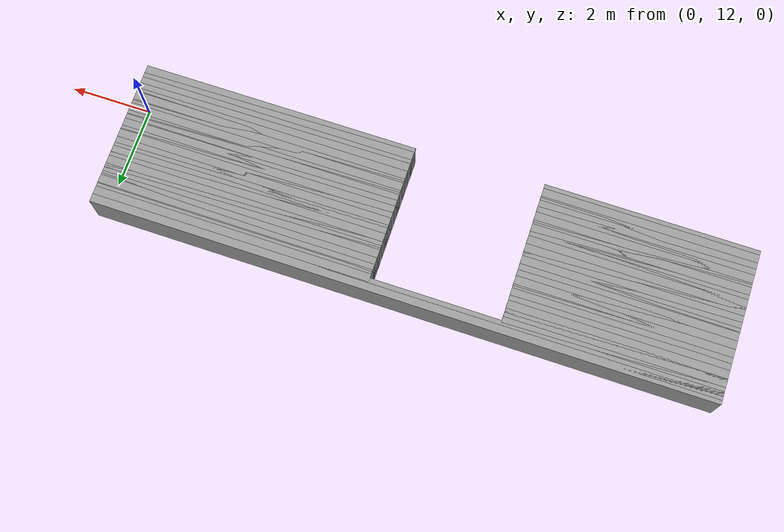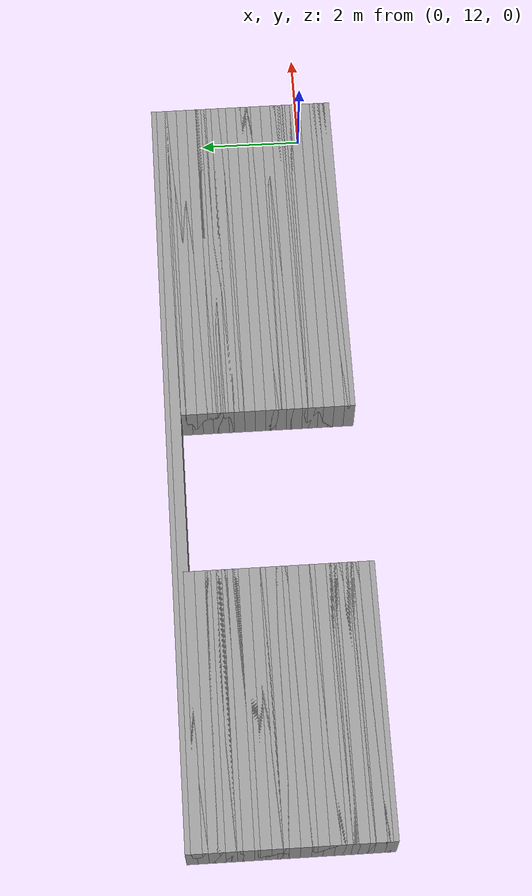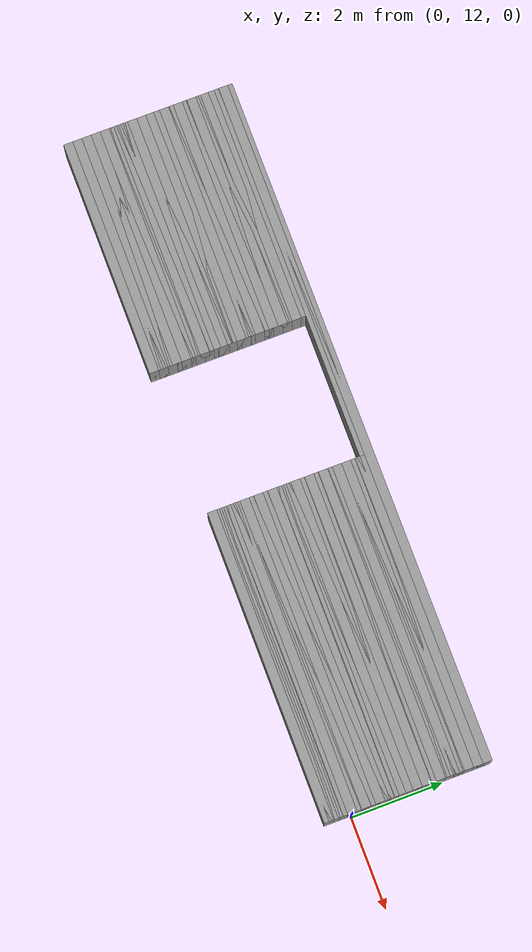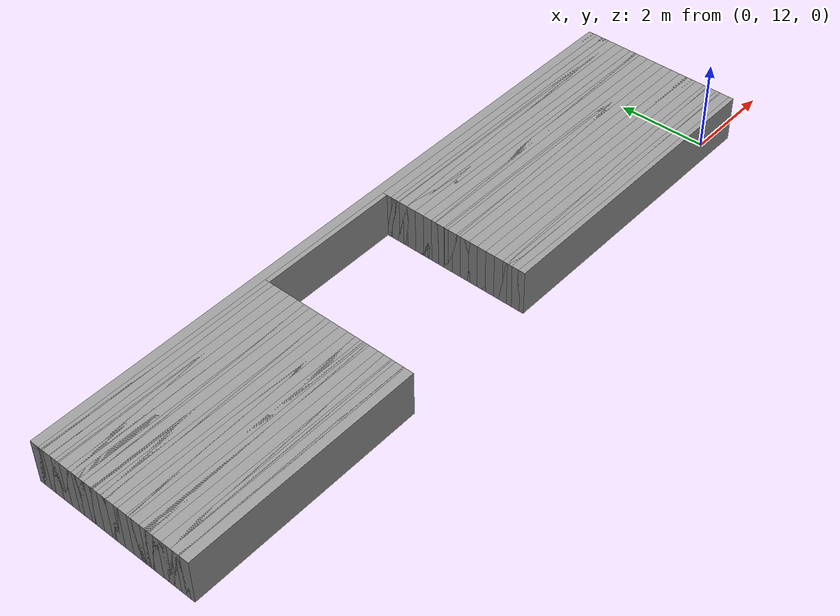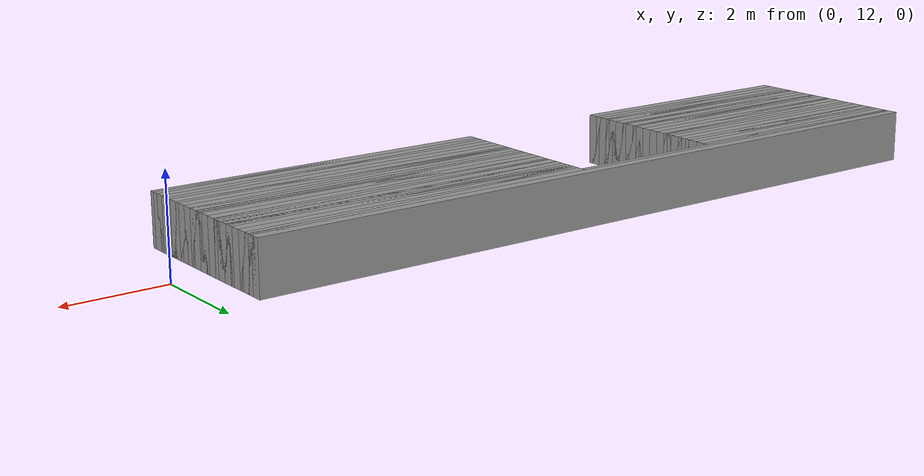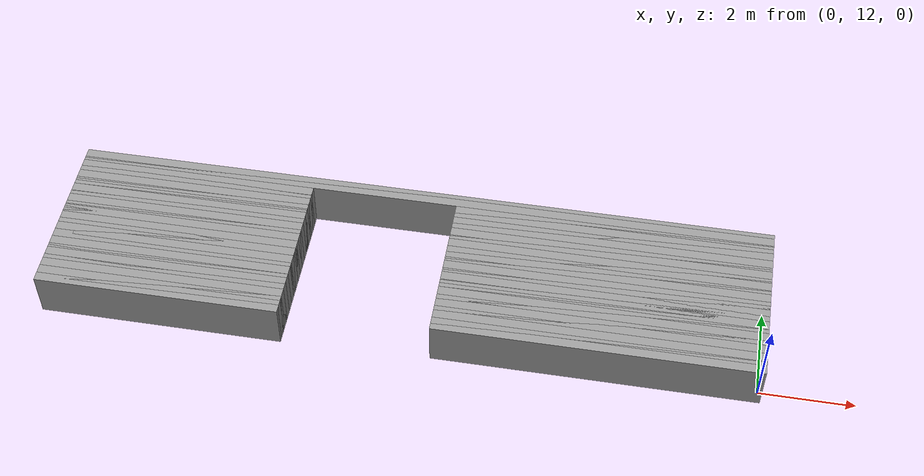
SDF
<sdf version="1.6">
 <world name="GridMap">
  <model name="GridMap">
   <link name="Wall_(123.5,114.0)">
    <collision name="Wall_(123.5,114.0)_Collision">
     <geometry><box><size>5.1000000000000005 0.2 1.0</size></box></geometry>
     <pose>-12.350000000000001 11.4 0.5 0 -0 0</pose>
    </collision>
    <visual name="Wall_(123.5,114.0)_Visual">
     <geometry><box><size>5.1000000000000005 0.2 1.0</size></box></geometry>
     <pose>-12.350000000000001 11.4 0.5 0 -0 0</pose>
     <material>
      <script><uri>file://media/materials/scripts/gazebo.material</uri><name>Gazebo/Grey</name></script>
      <ambient>1 1 1 1</ambient>
     </material>
     <meta><layer>0</layer></meta>
    </visual>
    <pose>0 0 0.5 0 -0 0</pose>
   </link>
   <link name="Wall_(33.5,115.0)">
    <collision name="Wall_(33.5,115.0)_Collision">
     <geometry><box><size>6.7 0.2 1.0</size></box></geometry>
     <pose>-3.35 11.5 0.5 0 -0 0</pose>
    </collision>
    <visual name="Wall_(33.5,115.0)_Visual">
     <geometry><box><size>6.7 0.2 1.0</size></box></geometry>
     <pose>-3.35 11.5 0.5 0 -0 0</pose>
     <material>
      <script><uri>file://media/materials/scripts/gazebo.material</uri><name>Gazebo/Grey</name></script>
      <ambient>1 1 1 1</ambient>
     </material>
     <meta><layer>0</layer></meta>
    </visual>
    <pose>0 0 0.5 0 -0 0</pose>
   </link>
   <link name="Wall_(123.5,115.0)">
    <collision name="Wall_(123.5,115.0)_Collision">
     <geometry><box><size>5.1000000000000005 0.2 1.0</size></box></geometry>
     <pose>-12.350000000000001 11.5 0.5 0 -0 0</pose>
    </collision>
    <visual name="Wall_(123.5,115.0)_Visual">
     <geometry><box><size>5.1000000000000005 0.2 1.0</size></box></geometry>
     <pose>-12.350000000000001 11.5 0.5 0 -0 0</pose>
     <material>
      <script><uri>file://media/materials/scripts/gazebo.material</uri><name>Gazebo/Grey</name></script>
      <ambient>1 1 1 1</ambient>
     </material>
     <meta><layer>0</layer></meta>
    </visual>
    <pose>0 0 0.5 0 -0 0</pose>
   </link>
   <link name="Wall_(33.5,116.0)">
    <collision name="Wall_(33.5,116.0)_Collision">
     <geometry><box><size>6.7 0.2 1.0</size></box></geometry>
     <pose>-3.35 11.600000000000001 0.5 0 -0 0</pose>
    </collision>
    <visual name="Wall_(33.5,116.0)_Visual">
     <geometry><box><size>6.7 0.2 1.0</size></box></geometry>
     <pose>-3.35 11.600000000000001 0.5 0 -0 0</pose>
     <material>
      <script><uri>file://media/materials/scripts/gazebo.material</uri><name>Gazebo/Grey</name></script>
      <ambient>1 1 1 1</ambient>
     </material>
     <meta><layer>0</layer></meta>
    </visual>
    <pose>0 0 0.5 0 -0 0</pose>
   </link>
   <link name="Wall_(123.5,116.0)">
    <collision name="Wall_(123.5,116.0)_Collision">
     <geometry><box><size>5.1000000000000005 0.2 1.0</size></box></geometry>
     <pose>-12.350000000000001 11.600000000000001 0.5 0 -0 0</pose>
    </collision>
    <visual name="Wall_(123.5,116.0)_Visual">
     <geometry><box><size>5.1000000000000005 0.2 1.0</size></box></geometry>
     <pose>-12.350000000000001 11.600000000000001 0.5 0 -0 0</pose>
     <material>
      <script><uri>file://media/materials/scripts/gazebo.material</uri><name>Gazebo/Grey</name></script>
      <ambient>1 1 1 1</ambient>
     </material>
     <meta><layer>0</layer></meta>
    </visual>
    <pose>0 0 0.5 0 -0 0</pose>
   </link>
   <link name="Wall_(33.5,117.0)">
    <collision name="Wall_(33.5,117.0)_Collision">
     <geometry><box><size>6.7 0.2 1.0</size></box></geometry>
     <pose>-3.35 11.700000000000001 0.5 0 -0 0</pose>
    </collision>
    <visual name="Wall_(33.5,117.0)_Visual">
     <geometry><box><size>6.7 0.2 1.0</size></box></geometry>
     <pose>-3.35 11.700000000000001 0.5 0 -0 0</pose>
     <material>
      <script><uri>file://media/materials/scripts/gazebo.material</uri><name>Gazebo/Grey</name></script>
      <ambient>1 1 1 1</ambient>
     </material>
     <meta><layer>0</layer></meta>
    </visual>
    <pose>0 0 0.5 0 -0 0</pose>
   </link>
   <link name="Wall_(123.5,117.0)">
    <collision name="Wall_(123.5,117.0)_Collision">
     <geometry><box><size>5.1000000000000005 0.2 1.0</size></box></geometry>
     <pose>-12.350000000000001 11.700000000000001 0.5 0 -0 0</pose>
    </collision>
    <visual name="Wall_(123.5,117.0)_Visual">
     <geometry><box><size>5.1000000000000005 0.2 1.0</size></box></geometry>
     <pose>-12.350000000000001 11.700000000000001 0.5 0 -0 0</pose>
     <material>
      <script><uri>file://media/materials/scripts/gazebo.material</uri><name>Gazebo/Grey</name></script>
      <ambient>1 1 1 1</ambient>
     </material>
     <meta><layer>0</layer></meta>
    </visual>
    <pose>0 0 0.5 0 -0 0</pose>
   </link>
   <link name="Wall_(33.5,118.0)">
    <collision name="Wall_(33.5,118.0)_Collision">
     <geometry><box><size>6.7 0.2 1.0</size></box></geometry>
     <pose>-3.35 11.8 0.5 0 -0 0</pose>
    </collision>
    <visual name="Wall_(33.5,118.0)_Visual">
     <geometry><box><size>6.7 0.2 1.0</size></box></geometry>
     <pose>-3.35 11.8 0.5 0 -0 0</pose>
     <material>
      <script><uri>file://media/materials/scripts/gazebo.material</uri><name>Gazebo/Grey</name></script>
      <ambient>1 1 1 1</ambient>
     </material>
     <meta><layer>0</layer></meta>
    </visual>
    <pose>0 0 0.5 0 -0 0</pose>
   </link>
   <link name="Wall_(123.5,118.0)">
    <collision name="Wall_(123.5,118.0)_Collision">
     <geometry><box><size>5.1000000000000005 0.2 1.0</size></box></geometry>
     <pose>-12.350000000000001 11.8 0.5 0 -0 0</pose>
    </collision>
    <visual name="Wall_(123.5,118.0)_Visual">
     <geometry><box><size>5.1000000000000005 0.2 1.0</size></box></geometry>
     <pose>-12.350000000000001 11.8 0.5 0 -0 0</pose>
     <material>
      <script><uri>file://media/materials/scripts/gazebo.material</uri><name>Gazebo/Grey</name></script>
      <ambient>1 1 1 1</ambient>
     </material>
     <meta><layer>0</layer></meta>
    </visual>
    <pose>0 0 0.5 0 -0 0</pose>
   </link>
   <link name="Wall_(33.5,119.0)">
    <collision name="Wall_(33.5,119.0)_Collision">
     <geometry><box><size>6.7 0.2 1.0</size></box></geometry>
     <pose>-3.35 11.9 0.5 0 -0 0</pose>
    </collision>
    <visual name="Wall_(33.5,119.0)_Visual">
     <geometry><box><size>6.7 0.2 1.0</size></box></geometry>
     <pose>-3.35 11.9 0.5 0 -0 0</pose>
     <material>
      <script><uri>file://media/materials/scripts/gazebo.material</uri><name>Gazebo/Grey</name></script>
      <ambient>1 1 1 1</ambient>
     </material>
     <meta><layer>0</layer></meta>
    </visual>
    <pose>0 0 0.5 0 -0 0</pose>
   </link>
   <link name="Wall_(123.5,119.0)">
    <collision name="Wall_(123.5,119.0)_Collision">
     <geometry><box><size>5.1000000000000005 0.2 1.0</size></box></geometry>
     <pose>-12.350000000000001 11.9 0.5 0 -0 0</pose>
    </collision>
    <visual name="Wall_(123.5,119.0)_Visual">
     <geometry><box><size>5.1000000000000005 0.2 1.0</size></box></geometry>
     <pose>-12.350000000000001 11.9 0.5 0 -0 0</pose>
     <material>
      <script><uri>file://media/materials/scripts/gazebo.material</uri><name>Gazebo/Grey</name></script>
      <ambient>1 1 1 1</ambient>
     </material>
     <meta><layer>0</layer></meta>
    </visual>
    <pose>0 0 0.5 0 -0 0</pose>
   </link>
   <link name="Wall_(33.5,120.0)">
    <collision name="Wall_(33.5,120.0)_Collision">
     <geometry><box><size>6.7 0.2 1.0</size></box></geometry>
     <pose>-3.35 12.0 0.5 0 -0 0</pose>
    </collision>
    <visual name="Wall_(33.5,120.0)_Visual">
     <geometry><box><size>6.7 0.2 1.0</size></box></geometry>
     <pose>-3.35 12.0 0.5 0 -0 0</pose>
     <material>
      <script><uri>file://media/materials/scripts/gazebo.material</uri><name>Gazebo/Grey</name></script>
      <ambient>1 1 1 1</ambient>
     </material>
     <meta><layer>0</layer></meta>
    </visual>
    <pose>0 0 0.5 0 -0 0</pose>
   </link>
   <link name="Wall_(123.5,120.0)">
    <collision name="Wall_(123.5,120.0)_Collision">
     <geometry><box><size>5.1000000000000005 0.2 1.0</size></box></geometry>
     <pose>-12.350000000000001 12.0 0.5 0 -0 0</pose>
    </collision>
    <visual name="Wall_(123.5,120.0)_Visual">
     <geometry><box><size>5.1000000000000005 0.2 1.0</size></box></geometry>
     <pose>-12.350000000000001 12.0 0.5 0 -0 0</pose>
     <material>
      <script><uri>file://media/materials/scripts/gazebo.material</uri><name>Gazebo/Grey</name></script>
      <ambient>1 1 1 1</ambient>
     </material>
     <meta><layer>0</layer></meta>
    </visual>
    <pose>0 0 0.5 0 -0 0</pose>
   </link>
   <link name="Wall_(33.5,121.0)">
    <collision name="Wall_(33.5,121.0)_Collision">
     <geometry><box><size>6.7 0.2 1.0</size></box></geometry>
     <pose>-3.35 12.100000000000001 0.5 0 -0 0</pose>
    </collision>
    <visual name="Wall_(33.5,121.0)_Visual">
     <geometry><box><size>6.7 0.2 1.0</size></box></geometry>
     <pose>-3.35 12.100000000000001 0.5 0 -0 0</pose>
     <material>
      <script><uri>file://media/materials/scripts/gazebo.material</uri><name>Gazebo/Grey</name></script>
      <ambient>1 1 1 1</ambient>
     </material>
     <meta><layer>0</layer></meta>
    </visual>
    <pose>0 0 0.5 0 -0 0</pose>
   </link>
   <link name="Wall_(123.5,121.0)">
    <collision name="Wall_(123.5,121.0)_Collision">
     <geometry><box><size>5.1000000000000005 0.2 1.0</size></box></geometry>
     <pose>-12.350000000000001 12.100000000000001 0.5 0 -0 0</pose>
    </collision>
    <visual name="Wall_(123.5,121.0)_Visual">
     <geometry><box><size>5.1000000000000005 0.2 1.0</size></box></geometry>
     <pose>-12.350000000000001 12.100000000000001 0.5 0 -0 0</pose>
     <material>
      <script><uri>file://media/materials/scripts/gazebo.material</uri><name>Gazebo/Grey</name></script>
      <ambient>1 1 1 1</ambient>
     </material>
     <meta><layer>0</layer></meta>
    </visual>
    <pose>0 0 0.5 0 -0 0</pose>
   </link>
   <link name="Wall_(33.5,122.0)">
    <collision name="Wall_(33.5,122.0)_Collision">
     <geometry><box><size>6.7 0.2 1.0</size></box></geometry>
     <pose>-3.35 12.200000000000001 0.5 0 -0 0</pose>
    </collision>
    <visual name="Wall_(33.5,122.0)_Visual">
     <geometry><box><size>6.7 0.2 1.0</size></box></geometry>
     <pose>-3.35 12.200000000000001 0.5 0 -0 0</pose>
     <material>
      <script><uri>file://media/materials/scripts/gazebo.material</uri><name>Gazebo/Grey</name></script>
      <ambient>1 1 1 1</ambient>
     </material>
     <meta><layer>0</layer></meta>
    </visual>
    <pose>0 0 0.5 0 -0 0</pose>
   </link>
   <link name="Wall_(123.5,122.0)">
    <collision name="Wall_(123.5,122.0)_Collision">
     <geometry><box><size>5.1000000000000005 0.2 1.0</size></box></geometry>
     <pose>-12.350000000000001 12.200000000000001 0.5 0 -0 0</pose>
    </collision>
    <visual name="Wall_(123.5,122.0)_Visual">
     <geometry><box><size>5.1000000000000005 0.2 1.0</size></box></geometry>
     <pose>-12.350000000000001 12.200000000000001 0.5 0 -0 0</pose>
     <material>
      <script><uri>file://media/materials/scripts/gazebo.material</uri><name>Gazebo/Grey</name></script>
      <ambient>1 1 1 1</ambient>
     </material>
     <meta><layer>0</layer></meta>
    </visual>
    <pose>0 0 0.5 0 -0 0</pose>
   </link>
   <link name="Wall_(33.5,123.0)">
    <collision name="Wall_(33.5,123.0)_Collision">
     <geometry><box><size>6.7 0.2 1.0</size></box></geometry>
     <pose>-3.35 12.3 0.5 0 -0 0</pose>
    </collision>
    <visual name="Wall_(33.5,123.0)_Visual">
     <geometry><box><size>6.7 0.2 1.0</size></box></geometry>
     <pose>-3.35 12.3 0.5 0 -0 0</pose>
     <material>
      <script><uri>file://media/materials/scripts/gazebo.material</uri><name>Gazebo/Grey</name></script>
      <ambient>1 1 1 1</ambient>
     </material>
     <meta><layer>0</layer></meta>
    </visual>
    <pose>0 0 0.5 0 -0 0</pose>
   </link>
   <link name="Wall_(123.5,123.0)">
    <collision name="Wall_(123.5,123.0)_Collision">
     <geometry><box><size>5.1000000000000005 0.2 1.0</size></box></geometry>
     <pose>-12.350000000000001 12.3 0.5 0 -0 0</pose>
    </collision>
    <visual name="Wall_(123.5,123.0)_Visual">
     <geometry><box><size>5.1000000000000005 0.2 1.0</size></box></geometry>
     <pose>-12.350000000000001 12.3 0.5 0 -0 0</pose>
     <material>
      <script><uri>file://media/materials/scripts/gazebo.material</uri><name>Gazebo/Grey</name></script>
      <ambient>1 1 1 1</ambient>
     </material>
     <meta><layer>0</layer></meta>
    </visual>
    <pose>0 0 0.5 0 -0 0</pose>
   </link>
   <link name="Wall_(33.5,124.0)">
    <collision name="Wall_(33.5,124.0)_Collision">
     <geometry><box><size>6.7 0.2 1.0</size></box></geometry>
     <pose>-3.35 12.4 0.5 0 -0 0</pose>
    </collision>
    <visual name="Wall_(33.5,124.0)_Visual">
     <geometry><box><size>6.7 0.2 1.0</size></box></geometry>
     <pose>-3.35 12.4 0.5 0 -0 0</pose>
     <material>
      <script><uri>file://media/materials/scripts/gazebo.material</uri><name>Gazebo/Grey</name></script>
      <ambient>1 1 1 1</ambient>
     </material>
     <meta><layer>0</layer></meta>
    </visual>
    <pose>0 0 0.5 0 -0 0</pose>
   </link>
   <link name="Wall_(123.5,124.0)">
    <collision name="Wall_(123.5,124.0)_Collision">
     <geometry><box><size>5.1000000000000005 0.2 1.0</size></box></geometry>
     <pose>-12.350000000000001 12.4 0.5 0 -0 0</pose>
    </collision>
    <visual name="Wall_(123.5,124.0)_Visual">
     <geometry><box><size>5.1000000000000005 0.2 1.0</size></box></geometry>
     <pose>-12.350000000000001 12.4 0.5 0 -0 0</pose>
     <material>
      <script><uri>file://media/materials/scripts/gazebo.material</uri><name>Gazebo/Grey</name></script>
      <ambient>1 1 1 1</ambient>
     </material>
     <meta><layer>0</layer></meta>
    </visual>
    <pose>0 0 0.5 0 -0 0</pose>
   </link>
   <link name="Wall_(33.5,125.0)">
    <collision name="Wall_(33.5,125.0)_Collision">
     <geometry><box><size>6.7 0.2 1.0</size></box></geometry>
     <pose>-3.35 12.5 0.5 0 -0 0</pose>
    </collision>
    <visual name="Wall_(33.5,125.0)_Visual">
     <geometry><box><size>6.7 0.2 1.0</size></box></geometry>
     <pose>-3.35 12.5 0.5 0 -0 0</pose>
     <material>
      <script><uri>file://media/materials/scripts/gazebo.material</uri><name>Gazebo/Grey</name></script>
      <ambient>1 1 1 1</ambient>
     </material>
     <meta><layer>0</layer></meta>
    </visual>
    <pose>0 0 0.5 0 -0 0</pose>
   </link>
   <link name="Wall_(123.5,125.0)">
    <collision name="Wall_(123.5,125.0)_Collision">
     <geometry><box><size>5.1000000000000005 0.2 1.0</size></box></geometry>
     <pose>-12.350000000000001 12.5 0.5 0 -0 0</pose>
    </collision>
    <visual name="Wall_(123.5,125.0)_Visual">
     <geometry><box><size>5.1000000000000005 0.2 1.0</size></box></geometry>
     <pose>-12.350000000000001 12.5 0.5 0 -0 0</pose>
     <material>
      <script><uri>file://media/materials/scripts/gazebo.material</uri><name>Gazebo/Grey</name></script>
      <ambient>1 1 1 1</ambient>
     </material>
     <meta><layer>0</layer></meta>
    </visual>
    <pose>0 0 0.5 0 -0 0</pose>
   </link>
   <link name="Wall_(33.5,126.0)">
    <collision name="Wall_(33.5,126.0)_Collision">
     <geometry><box><size>6.7 0.2 1.0</size></box></geometry>
     <pose>-3.35 12.600000000000001 0.5 0 -0 0</pose>
    </collision>
    <visual name="Wall_(33.5,126.0)_Visual">
     <geometry><box><size>6.7 0.2 1.0</size></box></geometry>
     <pose>-3.35 12.600000000000001 0.5 0 -0 0</pose>
     <material>
      <script><uri>file://media/materials/scripts/gazebo.material</uri><name>Gazebo/Grey</name></script>
      <ambient>1 1 1 1</ambient>
     </material>
     <meta><layer>0</layer></meta>
    </visual>
    <pose>0 0 0.5 0 -0 0</pose>
   </link>
   <link name="Wall_(123.5,126.0)">
    <collision name="Wall_(123.5,126.0)_Collision">
     <geometry><box><size>5.1000000000000005 0.2 1.0</size></box></geometry>
     <pose>-12.350000000000001 12.600000000000001 0.5 0 -0 0</pose>
    </collision>
    <visual name="Wall_(123.5,126.0)_Visual">
     <geometry><box><size>5.1000000000000005 0.2 1.0</size></box></geometry>
     <pose>-12.350000000000001 12.600000000000001 0.5 0 -0 0</pose>
     <material>
      <script><uri>file://media/materials/scripts/gazebo.material</uri><name>Gazebo/Grey</name></script>
      <ambient>1 1 1 1</ambient>
     </material>
     <meta><layer>0</layer></meta>
    </visual>
    <pose>0 0 0.5 0 -0 0</pose>
   </link>
   <link name="Wall_(33.5,127.0)">
    <collision name="Wall_(33.5,127.0)_Collision">
     <geometry><box><size>6.7 0.2 1.0</size></box></geometry>
     <pose>-3.35 12.700000000000001 0.5 0 -0 0</pose>
    </collision>
    <visual name="Wall_(33.5,127.0)_Visual">
     <geometry><box><size>6.7 0.2 1.0</size></box></geometry>
     <pose>-3.35 12.700000000000001 0.5 0 -0 0</pose>
     <material>
      <script><uri>file://media/materials/scripts/gazebo.material</uri><name>Gazebo/Grey</name></script>
      <ambient>1 1 1 1</ambient>
     </material>
     <meta><layer>0</layer></meta>
    </visual>
    <pose>0 0 0.5 0 -0 0</pose>
   </link>
   <link name="Wall_(123.5,127.0)">
    <collision name="Wall_(123.5,127.0)_Collision">
     <geometry><box><size>5.1000000000000005 0.2 1.0</size></box></geometry>
     <pose>-12.350000000000001 12.700000000000001 0.5 0 -0 0</pose>
    </collision>
    <visual name="Wall_(123.5,127.0)_Visual">
     <geometry><box><size>5.1000000000000005 0.2 1.0</size></box></geometry>
     <pose>-12.350000000000001 12.700000000000001 0.5 0 -0 0</pose>
     <material>
      <script><uri>file://media/materials/scripts/gazebo.material</uri><name>Gazebo/Grey</name></script>
      <ambient>1 1 1 1</ambient>
     </material>
     <meta><layer>0</layer></meta>
    </visual>
    <pose>0 0 0.5 0 -0 0</pose>
   </link>
   <link name="Wall_(33.5,128.0)">
    <collision name="Wall_(33.5,128.0)_Collision">
     <geometry><box><size>6.7 0.2 1.0</size></box></geometry>
     <pose>-3.35 12.8 0.5 0 -0 0</pose>
    </collision>
    <visual name="Wall_(33.5,128.0)_Visual">
     <geometry><box><size>6.7 0.2 1.0</size></box></geometry>
     <pose>-3.35 12.8 0.5 0 -0 0</pose>
     <material>
      <script><uri>file://media/materials/scripts/gazebo.material</uri><name>Gazebo/Grey</name></script>
      <ambient>1 1 1 1</ambient>
     </material>
     <meta><layer>0</layer></meta>
    </visual>
    <pose>0 0 0.5 0 -0 0</pose>
   </link>
   <link name="Wall_(123.5,128.0)">
    <collision name="Wall_(123.5,128.0)_Collision">
     <geometry><box><size>5.1000000000000005 0.2 1.0</size></box></geometry>
     <pose>-12.350000000000001 12.8 0.5 0 -0 0</pose>
    </collision>
    <visual name="Wall_(123.5,128.0)_Visual">
     <geometry><box><size>5.1000000000000005 0.2 1.0</size></box></geometry>
     <pose>-12.350000000000001 12.8 0.5 0 -0 0</pose>
     <material>
      <script><uri>file://media/materials/scripts/gazebo.material</uri><name>Gazebo/Grey</name></script>
      <ambient>1 1 1 1</ambient>
     </material>
     <meta><layer>0</layer></meta>
    </visual>
    <pose>0 0 0.5 0 -0 0</pose>
   </link>
   <link name="Wall_(33.5,129.0)">
    <collision name="Wall_(33.5,129.0)_Collision">
     <geometry><box><size>6.7 0.2 1.0</size></box></geometry>
     <pose>-3.35 12.9 0.5 0 -0 0</pose>
    </collision>
    <visual name="Wall_(33.5,129.0)_Visual">
     <geometry><box><size>6.7 0.2 1.0</size></box></geometry>
     <pose>-3.35 12.9 0.5 0 -0 0</pose>
     <material>
      <script><uri>file://media/materials/scripts/gazebo.material</uri><name>Gazebo/Grey</name></script>
      <ambient>1 1 1 1</ambient>
     </material>
     <meta><layer>0</layer></meta>
    </visual>
    <pose>0 0 0.5 0 -0 0</pose>
   </link>
   <link name="Wall_(123.5,129.0)">
    <collision name="Wall_(123.5,129.0)_Collision">
     <geometry><box><size>5.1000000000000005 0.2 1.0</size></box></geometry>
     <pose>-12.350000000000001 12.9 0.5 0 -0 0</pose>
    </collision>
    <visual name="Wall_(123.5,129.0)_Visual">
     <geometry><box><size>5.1000000000000005 0.2 1.0</size></box></geometry>
     <pose>-12.350000000000001 12.9 0.5 0 -0 0</pose>
     <material>
      <script><uri>file://media/materials/scripts/gazebo.material</uri><name>Gazebo/Grey</name></script>
      <ambient>1 1 1 1</ambient>
     </material>
     <meta><layer>0</layer></meta>
    </visual>
    <pose>0 0 0.5 0 -0 0</pose>
   </link>
   <link name="Wall_(33.5,130.0)">
    <collision name="Wall_(33.5,130.0)_Collision">
     <geometry><box><size>6.7 0.2 1.0</size></box></geometry>
     <pose>-3.35 13.0 0.5 0 -0 0</pose>
    </collision>
    <visual name="Wall_(33.5,130.0)_Visual">
     <geometry><box><size>6.7 0.2 1.0</size></box></geometry>
     <pose>-3.35 13.0 0.5 0 -0 0</pose>
     <material>
      <script><uri>file://media/materials/scripts/gazebo.material</uri><name>Gazebo/Grey</name></script>
      <ambient>1 1 1 1</ambient>
     </material>
     <meta><layer>0</layer></meta>
    </visual>
    <pose>0 0 0.5 0 -0 0</pose>
   </link>
   <link name="Wall_(123.5,130.0)">
    <collision name="Wall_(123.5,130.0)_Collision">
     <geometry><box><size>5.1000000000000005 0.2 1.0</size></box></geometry>
     <pose>-12.350000000000001 13.0 0.5 0 -0 0</pose>
    </collision>
    <visual name="Wall_(123.5,130.0)_Visual">
     <geometry><box><size>5.1000000000000005 0.2 1.0</size></box></geometry>
     <pose>-12.350000000000001 13.0 0.5 0 -0 0</pose>
     <material>
      <script><uri>file://media/materials/scripts/gazebo.material</uri><name>Gazebo/Grey</name></script>
      <ambient>1 1 1 1</ambient>
     </material>
     <meta><layer>0</layer></meta>
    </visual>
    <pose>0 0 0.5 0 -0 0</pose>
   </link>
   <link name="Wall_(33.5,131.0)">
    <collision name="Wall_(33.5,131.0)_Collision">
     <geometry><box><size>6.7 0.2 1.0</size></box></geometry>
     <pose>-3.35 13.100000000000001 0.5 0 -0 0</pose>
    </collision>
    <visual name="Wall_(33.5,131.0)_Visual">
     <geometry><box><size>6.7 0.2 1.0</size></box></geometry>
     <pose>-3.35 13.100000000000001 0.5 0 -0 0</pose>
     <material>
      <script><uri>file://media/materials/scripts/gazebo.material</uri><name>Gazebo/Grey</name></script>
      <ambient>1 1 1 1</ambient>
     </material>
     <meta><layer>0</layer></meta>
    </visual>
    <pose>0 0 0.5 0 -0 0</pose>
   </link>
   <link name="Wall_(123.5,131.0)">
    <collision name="Wall_(123.5,131.0)_Collision">
     <geometry><box><size>5.1000000000000005 0.2 1.0</size></box></geometry>
     <pose>-12.350000000000001 13.100000000000001 0.5 0 -0 0</pose>
    </collision>
    <visual name="Wall_(123.5,131.0)_Visual">
     <geometry><box><size>5.1000000000000005 0.2 1.0</size></box></geometry>
     <pose>-12.350000000000001 13.100000000000001 0.5 0 -0 0</pose>
     <material>
      <script><uri>file://media/materials/scripts/gazebo.material</uri><name>Gazebo/Grey</name></script>
      <ambient>1 1 1 1</ambient>
     </material>
     <meta><layer>0</layer></meta>
    </visual>
    <pose>0 0 0.5 0 -0 0</pose>
   </link>
   <link name="Wall_(33.5,132.0)">
    <collision name="Wall_(33.5,132.0)_Collision">
     <geometry><box><size>6.7 0.2 1.0</size></box></geometry>
     <pose>-3.35 13.200000000000001 0.5 0 -0 0</pose>
    </collision>
    <visual name="Wall_(33.5,132.0)_Visual">
     <geometry><box><size>6.7 0.2 1.0</size></box></geometry>
     <pose>-3.35 13.200000000000001 0.5 0 -0 0</pose>
     <material>
      <script><uri>file://media/materials/scripts/gazebo.material</uri><name>Gazebo/Grey</name></script>
      <ambient>1 1 1 1</ambient>
     </material>
     <meta><layer>0</layer></meta>
    </visual>
    <pose>0 0 0.5 0 -0 0</pose>
   </link>
   <link name="Wall_(123.5,132.0)">
    <collision name="Wall_(123.5,132.0)_Collision">
     <geometry><box><size>5.1000000000000005 0.2 1.0</size></box></geometry>
     <pose>-12.350000000000001 13.200000000000001 0.5 0 -0 0</pose>
    </collision>
    <visual name="Wall_(123.5,132.0)_Visual">
     <geometry><box><size>5.1000000000000005 0.2 1.0</size></box></geometry>
     <pose>-12.350000000000001 13.200000000000001 0.5 0 -0 0</pose>
     <material>
      <script><uri>file://media/materials/scripts/gazebo.material</uri><name>Gazebo/Grey</name></script>
      <ambient>1 1 1 1</ambient>
     </material>
     <meta><layer>0</layer></meta>
    </visual>
    <pose>0 0 0.5 0 -0 0</pose>
   </link>
   <link name="Wall_(33.5,133.0)">
    <collision name="Wall_(33.5,133.0)_Collision">
     <geometry><box><size>6.7 0.2 1.0</size></box></geometry>
     <pose>-3.35 13.3 0.5 0 -0 0</pose>
    </collision>
    <visual name="Wall_(33.5,133.0)_Visual">
     <geometry><box><size>6.7 0.2 1.0</size></box></geometry>
     <pose>-3.35 13.3 0.5 0 -0 0</pose>
     <material>
      <script><uri>file://media/materials/scripts/gazebo.material</uri><name>Gazebo/Grey</name></script>
      <ambient>1 1 1 1</ambient>
     </material>
     <meta><layer>0</layer></meta>
    </visual>
    <pose>0 0 0.5 0 -0 0</pose>
   </link>
   <link name="Wall_(123.5,133.0)">
    <collision name="Wall_(123.5,133.0)_Collision">
     <geometry><box><size>5.1000000000000005 0.2 1.0</size></box></geometry>
     <pose>-12.350000000000001 13.3 0.5 0 -0 0</pose>
    </collision>
    <visual name="Wall_(123.5,133.0)_Visual">
     <geometry><box><size>5.1000000000000005 0.2 1.0</size></box></geometry>
     <pose>-12.350000000000001 13.3 0.5 0 -0 0</pose>
     <material>
      <script><uri>file://media/materials/scripts/gazebo.material</uri><name>Gazebo/Grey</name></script>
      <ambient>1 1 1 1</ambient>
     </material>
     <meta><layer>0</layer></meta>
    </visual>
    <pose>0 0 0.5 0 -0 0</pose>
   </link>
   <link name="Wall_(33.5,134.0)">
    <collision name="Wall_(33.5,134.0)_Collision">
     <geometry><box><size>6.7 0.2 1.0</size></box></geometry>
     <pose>-3.35 13.4 0.5 0 -0 0</pose>
    </collision>
    <visual name="Wall_(33.5,134.0)_Visual">
     <geometry><box><size>6.7 0.2 1.0</size></box></geometry>
     <pose>-3.35 13.4 0.5 0 -0 0</pose>
     <material>
      <script><uri>file://media/materials/scripts/gazebo.material</uri><name>Gazebo/Grey</name></script>
      <ambient>1 1 1 1</ambient>
     </material>
     <meta><layer>0</layer></meta>
    </visual>
    <pose>0 0 0.5 0 -0 0</pose>
   </link>
   <link name="Wall_(123.5,134.0)">
    <collision name="Wall_(123.5,134.0)_Collision">
     <geometry><box><size>5.1000000000000005 0.2 1.0</size></box></geometry>
     <pose>-12.350000000000001 13.4 0.5 0 -0 0</pose>
    </collision>
    <visual name="Wall_(123.5,134.0)_Visual">
     <geometry><box><size>5.1000000000000005 0.2 1.0</size></box></geometry>
     <pose>-12.350000000000001 13.4 0.5 0 -0 0</pose>
     <material>
      <script><uri>file://media/materials/scripts/gazebo.material</uri><name>Gazebo/Grey</name></script>
      <ambient>1 1 1 1</ambient>
     </material>
     <meta><layer>0</layer></meta>
    </visual>
    <pose>0 0 0.5 0 -0 0</pose>
   </link>
   <link name="Wall_(33.5,135.0)">
    <collision name="Wall_(33.5,135.0)_Collision">
     <geometry><box><size>6.7 0.2 1.0</size></box></geometry>
     <pose>-3.35 13.5 0.5 0 -0 0</pose>
    </collision>
    <visual name="Wall_(33.5,135.0)_Visual">
     <geometry><box><size>6.7 0.2 1.0</size></box></geometry>
     <pose>-3.35 13.5 0.5 0 -0 0</pose>
     <material>
      <script><uri>file://media/materials/scripts/gazebo.material</uri><name>Gazebo/Grey</name></script>
      <ambient>1 1 1 1</ambient>
     </material>
     <meta><layer>0</layer></meta>
    </visual>
    <pose>0 0 0.5 0 -0 0</pose>
   </link>
   <link name="Wall_(123.5,135.0)">
    <collision name="Wall_(123.5,135.0)_Collision">
     <geometry><box><size>5.1000000000000005 0.2 1.0</size></box></geometry>
     <pose>-12.350000000000001 13.5 0.5 0 -0 0</pose>
    </collision>
    <visual name="Wall_(123.5,135.0)_Visual">
     <geometry><box><size>5.1000000000000005 0.2 1.0</size></box></geometry>
     <pose>-12.350000000000001 13.5 0.5 0 -0 0</pose>
     <material>
      <script><uri>file://media/materials/scripts/gazebo.material</uri><name>Gazebo/Grey</name></script>
      <ambient>1 1 1 1</ambient>
     </material>
     <meta><layer>0</layer></meta>
    </visual>
    <pose>0 0 0.5 0 -0 0</pose>
   </link>
   <link name="Wall_(33.5,136.0)">
    <collision name="Wall_(33.5,136.0)_Collision">
     <geometry><box><size>6.7 0.2 1.0</size></box></geometry>
     <pose>-3.35 13.600000000000001 0.5 0 -0 0</pose>
    </collision>
    <visual name="Wall_(33.5,136.0)_Visual">
     <geometry><box><size>6.7 0.2 1.0</size></box></geometry>
     <pose>-3.35 13.600000000000001 0.5 0 -0 0</pose>
     <material>
      <script><uri>file://media/materials/scripts/gazebo.material</uri><name>Gazebo/Grey</name></script>
      <ambient>1 1 1 1</ambient>
     </material>
     <meta><layer>0</layer></meta>
    </visual>
    <pose>0 0 0.5 0 -0 0</pose>
   </link>
   <link name="Wall_(123.5,136.0)">
    <collision name="Wall_(123.5,136.0)_Collision">
     <geometry><box><size>5.1000000000000005 0.2 1.0</size></box></geometry>
     <pose>-12.350000000000001 13.600000000000001 0.5 0 -0 0</pose>
    </collision>
    <visual name="Wall_(123.5,136.0)_Visual">
     <geometry><box><size>5.1000000000000005 0.2 1.0</size></box></geometry>
     <pose>-12.350000000000001 13.600000000000001 0.5 0 -0 0</pose>
     <material>
      <script><uri>file://media/materials/scripts/gazebo.material</uri><name>Gazebo/Grey</name></script>
      <ambient>1 1 1 1</ambient>
     </material>
     <meta><layer>0</layer></meta>
    </visual>
    <pose>0 0 0.5 0 -0 0</pose>
   </link>
   <link name="Wall_(33.5,137.0)">
    <collision name="Wall_(33.5,137.0)_Collision">
     <geometry><box><size>6.7 0.2 1.0</size></box></geometry>
     <pose>-3.35 13.700000000000001 0.5 0 -0 0</pose>
    </collision>
    <visual name="Wall_(33.5,137.0)_Visual">
     <geometry><box><size>6.7 0.2 1.0</size></box></geometry>
     <pose>-3.35 13.700000000000001 0.5 0 -0 0</pose>
     <material>
      <script><uri>file://media/materials/scripts/gazebo.material</uri><name>Gazebo/Grey</name></script>
      <ambient>1 1 1 1</ambient>
     </material>
     <meta><layer>0</layer></meta>
    </visual>
    <pose>0 0 0.5 0 -0 0</pose>
   </link>
   <link name="Wall_(123.5,137.0)">
    <collision name="Wall_(123.5,137.0)_Collision">
     <geometry><box><size>5.1000000000000005 0.2 1.0</size></box></geometry>
     <pose>-12.350000000000001 13.700000000000001 0.5 0 -0 0</pose>
    </collision>
    <visual name="Wall_(123.5,137.0)_Visual">
     <geometry><box><size>5.1000000000000005 0.2 1.0</size></box></geometry>
     <pose>-12.350000000000001 13.700000000000001 0.5 0 -0 0</pose>
     <material>
      <script><uri>file://media/materials/scripts/gazebo.material</uri><name>Gazebo/Grey</name></script>
      <ambient>1 1 1 1</ambient>
     </material>
     <meta><layer>0</layer></meta>
    </visual>
    <pose>0 0 0.5 0 -0 0</pose>
   </link>
   <link name="Wall_(33.5,138.0)">
    <collision name="Wall_(33.5,138.0)_Collision">
     <geometry><box><size>6.7 0.2 1.0</size></box></geometry>
     <pose>-3.35 13.8 0.5 0 -0 0</pose>
    </collision>
    <visual name="Wall_(33.5,138.0)_Visual">
     <geometry><box><size>6.7 0.2 1.0</size></box></geometry>
     <pose>-3.35 13.8 0.5 0 -0 0</pose>
     <material>
      <script><uri>file://media/materials/scripts/gazebo.material</uri><name>Gazebo/Grey</name></script>
      <ambient>1 1 1 1</ambient>
     </material>
     <meta><layer>0</layer></meta>
    </visual>
    <pose>0 0 0.5 0 -0 0</pose>
   </link>
   <link name="Wall_(123.5,138.0)">
    <collision name="Wall_(123.5,138.0)_Collision">
     <geometry><box><size>5.1000000000000005 0.2 1.0</size></box></geometry>
     <pose>-12.350000000000001 13.8 0.5 0 -0 0</pose>
    </collision>
    <visual name="Wall_(123.5,138.0)_Visual">
     <geometry><box><size>5.1000000000000005 0.2 1.0</size></box></geometry>
     <pose>-12.350000000000001 13.8 0.5 0 -0 0</pose>
     <material>
      <script><uri>file://media/materials/scripts/gazebo.material</uri><name>Gazebo/Grey</name></script>
      <ambient>1 1 1 1</ambient>
     </material>
     <meta><layer>0</layer></meta>
    </visual>
    <pose>0 0 0.5 0 -0 0</pose>
   </link>
   <link name="Wall_(33.5,139.0)">
    <collision name="Wall_(33.5,139.0)_Collision">
     <geometry><box><size>6.7 0.2 1.0</size></box></geometry>
     <pose>-3.35 13.9 0.5 0 -0 0</pose>
    </collision>
    <visual name="Wall_(33.5,139.0)_Visual">
     <geometry><box><size>6.7 0.2 1.0</size></box></geometry>
     <pose>-3.35 13.9 0.5 0 -0 0</pose>
     <material>
      <script><uri>file://media/materials/scripts/gazebo.material</uri><name>Gazebo/Grey</name></script>
      <ambient>1 1 1 1</ambient>
     </material>
     <meta><layer>0</layer></meta>
    </visual>
    <pose>0 0 0.5 0 -0 0</pose>
   </link>
   <link name="Wall_(123.5,139.0)">
    <collision name="Wall_(123.5,139.0)_Collision">
     <geometry><box><size>5.1000000000000005 0.2 1.0</size></box></geometry>
     <pose>-12.350000000000001 13.9 0.5 0 -0 0</pose>
    </collision>
    <visual name="Wall_(123.5,139.0)_Visual">
     <geometry><box><size>5.1000000000000005 0.2 1.0</size></box></geometry>
     <pose>-12.350000000000001 13.9 0.5 0 -0 0</pose>
     <material>
      <script><uri>file://media/materials/scripts/gazebo.material</uri><name>Gazebo/Grey</name></script>
      <ambient>1 1 1 1</ambient>
     </material>
     <meta><layer>0</layer></meta>
    </visual>
    <pose>0 0 0.5 0 -0 0</pose>
   </link>
   <link name="Wall_(33.5,140.0)">
    <collision name="Wall_(33.5,140.0)_Collision">
     <geometry><box><size>6.7 0.2 1.0</size></box></geometry>
     <pose>-3.35 14.0 0.5 0 -0 0</pose>
    </collision>
    <visual name="Wall_(33.5,140.0)_Visual">
     <geometry><box><size>6.7 0.2 1.0</size></box></geometry>
     <pose>-3.35 14.0 0.5 0 -0 0</pose>
     <material>
      <script><uri>file://media/materials/scripts/gazebo.material</uri><name>Gazebo/Grey</name></script>
      <ambient>1 1 1 1</ambient>
     </material>
     <meta><layer>0</layer></meta>
    </visual>
    <pose>0 0 0.5 0 -0 0</pose>
   </link>
   <link name="Wall_(123.5,140.0)">
    <collision name="Wall_(123.5,140.0)_Collision">
     <geometry><box><size>5.1000000000000005 0.2 1.0</size></box></geometry>
     <pose>-12.350000000000001 14.0 0.5 0 -0 0</pose>
    </collision>
    <visual name="Wall_(123.5,140.0)_Visual">
     <geometry><box><size>5.1000000000000005 0.2 1.0</size></box></geometry>
     <pose>-12.350000000000001 14.0 0.5 0 -0 0</pose>
     <material>
      <script><uri>file://media/materials/scripts/gazebo.material</uri><name>Gazebo/Grey</name></script>
      <ambient>1 1 1 1</ambient>
     </material>
     <meta><layer>0</layer></meta>
    </visual>
    <pose>0 0 0.5 0 -0 0</pose>
   </link>
   <link name="Wall_(33.5,141.0)">
    <collision name="Wall_(33.5,141.0)_Collision">
     <geometry><box><size>6.7 0.2 1.0</size></box></geometry>
     <pose>-3.35 14.100000000000001 0.5 0 -0 0</pose>
    </collision>
    <visual name="Wall_(33.5,141.0)_Visual">
     <geometry><box><size>6.7 0.2 1.0</size></box></geometry>
     <pose>-3.35 14.100000000000001 0.5 0 -0 0</pose>
     <material>
      <script><uri>file://media/materials/scripts/gazebo.material</uri><name>Gazebo/Grey</name></script>
      <ambient>1 1 1 1</ambient>
     </material>
     <meta><layer>0</layer></meta>
    </visual>
    <pose>0 0 0.5 0 -0 0</pose>
   </link>
   <link name="Wall_(123.5,141.0)">
    <collision name="Wall_(123.5,141.0)_Collision">
     <geometry><box><size>5.1000000000000005 0.2 1.0</size></box></geometry>
     <pose>-12.350000000000001 14.100000000000001 0.5 0 -0 0</pose>
    </collision>
    <visual name="Wall_(123.5,141.0)_Visual">
     <geometry><box><size>5.1000000000000005 0.2 1.0</size></box></geometry>
     <pose>-12.350000000000001 14.100000000000001 0.5 0 -0 0</pose>
     <material>
      <script><uri>file://media/materials/scripts/gazebo.material</uri><name>Gazebo/Grey</name></script>
      <ambient>1 1 1 1</ambient>
     </material>
     <meta><layer>0</layer></meta>
    </visual>
    <pose>0 0 0.5 0 -0 0</pose>
   </link>
   <link name="Wall_(33.5,142.0)">
    <collision name="Wall_(33.5,142.0)_Collision">
     <geometry><box><size>6.7 0.2 1.0</size></box></geometry>
     <pose>-3.35 14.200000000000001 0.5 0 -0 0</pose>
    </collision>
    <visual name="Wall_(33.5,142.0)_Visual">
     <geometry><box><size>6.7 0.2 1.0</size></box></geometry>
     <pose>-3.35 14.200000000000001 0.5 0 -0 0</pose>
     <material>
      <script><uri>file://media/materials/scripts/gazebo.material</uri><name>Gazebo/Grey</name></script>
      <ambient>1 1 1 1</ambient>
     </material>
     <meta><layer>0</layer></meta>
    </visual>
    <pose>0 0 0.5 0 -0 0</pose>
   </link>
   <link name="Wall_(123.5,142.0)">
    <collision name="Wall_(123.5,142.0)_Collision">
     <geometry><box><size>5.1000000000000005 0.2 1.0</size></box></geometry>
     <pose>-12.350000000000001 14.200000000000001 0.5 0 -0 0</pose>
    </collision>
    <visual name="Wall_(123.5,142.0)_Visual">
     <geometry><box><size>5.1000000000000005 0.2 1.0</size></box></geometry>
     <pose>-12.350000000000001 14.200000000000001 0.5 0 -0 0</pose>
     <material>
      <script><uri>file://media/materials/scripts/gazebo.material</uri><name>Gazebo/Grey</name></script>
      <ambient>1 1 1 1</ambient>
     </material>
     <meta><layer>0</layer></meta>
    </visual>
    <pose>0 0 0.5 0 -0 0</pose>
   </link>
   <link name="Wall_(33.5,143.0)">
    <collision name="Wall_(33.5,143.0)_Collision">
     <geometry><box><size>6.7 0.2 1.0</size></box></geometry>
     <pose>-3.35 14.3 0.5 0 -0 0</pose>
    </collision>
    <visual name="Wall_(33.5,143.0)_Visual">
     <geometry><box><size>6.7 0.2 1.0</size></box></geometry>
     <pose>-3.35 14.3 0.5 0 -0 0</pose>
     <material>
      <script><uri>file://media/materials/scripts/gazebo.material</uri><name>Gazebo/Grey</name></script>
      <ambient>1 1 1 1</ambient>
     </material>
     <meta><layer>0</layer></meta>
    </visual>
    <pose>0 0 0.5 0 -0 0</pose>
   </link>
   <link name="Wall_(123.5,143.0)">
    <collision name="Wall_(123.5,143.0)_Collision">
     <geometry><box><size>5.1000000000000005 0.2 1.0</size></box></geometry>
     <pose>-12.350000000000001 14.3 0.5 0 -0 0</pose>
    </collision>
    <visual name="Wall_(123.5,143.0)_Visual">
     <geometry><box><size>5.1000000000000005 0.2 1.0</size></box></geometry>
     <pose>-12.350000000000001 14.3 0.5 0 -0 0</pose>
     <material>
      <script><uri>file://media/materials/scripts/gazebo.material</uri><name>Gazebo/Grey</name></script>
      <ambient>1 1 1 1</ambient>
     </material>
     <meta><layer>0</layer></meta>
    </visual>
    <pose>0 0 0.5 0 -0 0</pose>
   </link>
   <link name="Wall_(33.5,144.0)">
    <collision name="Wall_(33.5,144.0)_Collision">
     <geometry><box><size>6.7 0.2 1.0</size></box></geometry>
     <pose>-3.35 14.4 0.5 0 -0 0</pose>
    </collision>
    <visual name="Wall_(33.5,144.0)_Visual">
     <geometry><box><size>6.7 0.2 1.0</size></box></geometry>
     <pose>-3.35 14.4 0.5 0 -0 0</pose>
     <material>
      <script><uri>file://media/materials/scripts/gazebo.material</uri><name>Gazebo/Grey</name></script>
      <ambient>1 1 1 1</ambient>
     </material>
     <meta><layer>0</layer></meta>
    </visual>
    <pose>0 0 0.5 0 -0 0</pose>
   </link>
   <link name="Wall_(123.5,144.0)">
    <collision name="Wall_(123.5,144.0)_Collision">
     <geometry><box><size>5.1000000000000005 0.2 1.0</size></box></geometry>
     <pose>-12.350000000000001 14.4 0.5 0 -0 0</pose>
    </collision>
    <visual name="Wall_(123.5,144.0)_Visual">
     <geometry><box><size>5.1000000000000005 0.2 1.0</size></box></geometry>
     <pose>-12.350000000000001 14.4 0.5 0 -0 0</pose>
     <material>
      <script><uri>file://media/materials/scripts/gazebo.material</uri><name>Gazebo/Grey</name></script>
      <ambient>1 1 1 1</ambient>
     </material>
     <meta><layer>0</layer></meta>
    </visual>
    <pose>0 0 0.5 0 -0 0</pose>
   </link>
   <link name="Wall_(33.5,145.0)">
    <collision name="Wall_(33.5,145.0)_Collision">
     <geometry><box><size>6.7 0.2 1.0</size></box></geometry>
     <pose>-3.35 14.5 0.5 0 -0 0</pose>
    </collision>
    <visual name="Wall_(33.5,145.0)_Visual">
     <geometry><box><size>6.7 0.2 1.0</size></box></geometry>
     <pose>-3.35 14.5 0.5 0 -0 0</pose>
     <material>
      <script><uri>file://media/materials/scripts/gazebo.material</uri><name>Gazebo/Grey</name></script>
      <ambient>1 1 1 1</ambient>
     </material>
     <meta><layer>0</layer></meta>
    </visual>
    <pose>0 0 0.5 0 -0 0</pose>
   </link>
   <link name="Wall_(123.5,145.0)">
    <collision name="Wall_(123.5,145.0)_Collision">
     <geometry><box><size>5.1000000000000005 0.2 1.0</size></box></geometry>
     <pose>-12.350000000000001 14.5 0.5 0 -0 0</pose>
    </collision>
    <visual name="Wall_(123.5,145.0)_Visual">
     <geometry><box><size>5.1000000000000005 0.2 1.0</size></box></geometry>
     <pose>-12.350000000000001 14.5 0.5 0 -0 0</pose>
     <material>
      <script><uri>file://media/materials/scripts/gazebo.material</uri><name>Gazebo/Grey</name></script>
      <ambient>1 1 1 1</ambient>
     </material>
     <meta><layer>0</layer></meta>
    </visual>
    <pose>0 0 0.5 0 -0 0</pose>
   </link>
   <link name="Wall_(33.5,146.0)">
    <collision name="Wall_(33.5,146.0)_Collision">
     <geometry><box><size>6.7 0.2 1.0</size></box></geometry>
     <pose>-3.35 14.600000000000001 0.5 0 -0 0</pose>
    </collision>
    <visual name="Wall_(33.5,146.0)_Visual">
     <geometry><box><size>6.7 0.2 1.0</size></box></geometry>
     <pose>-3.35 14.600000000000001 0.5 0 -0 0</pose>
     <material>
      <script><uri>file://media/materials/scripts/gazebo.material</uri><name>Gazebo/Grey</name></script>
      <ambient>1 1 1 1</ambient>
     </material>
     <meta><layer>0</layer></meta>
    </visual>
    <pose>0 0 0.5 0 -0 0</pose>
   </link>
   <link name="Wall_(123.5,146.0)">
    <collision name="Wall_(123.5,146.0)_Collision">
     <geometry><box><size>5.1000000000000005 0.2 1.0</size></box></geometry>
     <pose>-12.350000000000001 14.600000000000001 0.5 0 -0 0</pose>
    </collision>
    <visual name="Wall_(123.5,146.0)_Visual">
     <geometry><box><size>5.1000000000000005 0.2 1.0</size></box></geometry>
     <pose>-12.350000000000001 14.600000000000001 0.5 0 -0 0</pose>
     <material>
      <script><uri>file://media/materials/scripts/gazebo.material</uri><name>Gazebo/Grey</name></script>
      <ambient>1 1 1 1</ambient>
     </material>
     <meta><layer>0</layer></meta>
    </visual>
    <pose>0 0 0.5 0 -0 0</pose>
   </link>
   <link name="Wall_(33.5,147.0)">
    <collision name="Wall_(33.5,147.0)_Collision">
     <geometry><box><size>6.7 0.2 1.0</size></box></geometry>
     <pose>-3.35 14.700000000000001 0.5 0 -0 0</pose>
    </collision>
    <visual name="Wall_(33.5,147.0)_Visual">
     <geometry><box><size>6.7 0.2 1.0</size></box></geometry>
     <pose>-3.35 14.700000000000001 0.5 0 -0 0</pose>
     <material>
      <script><uri>file://media/materials/scripts/gazebo.material</uri><name>Gazebo/Grey</name></script>
      <ambient>1 1 1 1</ambient>
     </material>
     <meta><layer>0</layer></meta>
    </visual>
    <pose>0 0 0.5 0 -0 0</pose>
   </link>
   <link name="Wall_(123.5,147.0)">
    <collision name="Wall_(123.5,147.0)_Collision">
     <geometry><box><size>5.1000000000000005 0.2 1.0</size></box></geometry>
     <pose>-12.350000000000001 14.700000000000001 0.5 0 -0 0</pose>
    </collision>
    <visual name="Wall_(123.5,147.0)_Visual">
     <geometry><box><size>5.1000000000000005 0.2 1.0</size></box></geometry>
     <pose>-12.350000000000001 14.700000000000001 0.5 0 -0 0</pose>
     <material>
      <script><uri>file://media/materials/scripts/gazebo.material</uri><name>Gazebo/Grey</name></script>
      <ambient>1 1 1 1</ambient>
     </material>
     <meta><layer>0</layer></meta>
    </visual>
    <pose>0 0 0.5 0 -0 0</pose>
   </link>
   <link name="Wall_(74.5,148.0)">
    <collision name="Wall_(74.5,148.0)_Collision">
     <geometry><box><size>14.9 0.2 1.0</size></box></geometry>
     <pose>-7.45 14.8 0.5 0 -0 0</pose>
    </collision>
    <visual name="Wall_(74.5,148.0)_Visual">
     <geometry><box><size>14.9 0.2 1.0</size></box></geometry>
     <pose>-7.45 14.8 0.5 0 -0 0</pose>
     <material>
      <script><uri>file://media/materials/scripts/gazebo.material</uri><name>Gazebo/Grey</name></script>
      <ambient>1 1 1 1</ambient>
     </material>
     <meta><layer>0</layer></meta>
    </visual>
    <pose>0 0 0.5 0 -0 0</pose>
   </link>
   <link name="Wall_(74.5,149.0)">
    <collision name="Wall_(74.5,149.0)_Collision">
     <geometry><box><size>14.9 0.2 1.0</size></box></geometry>
     <pose>-7.45 14.9 0.5 0 -0 0</pose>
    </collision>
    <visual name="Wall_(74.5,149.0)_Visual">
     <geometry><box><size>14.9 0.2 1.0</size></box></geometry>
     <pose>-7.45 14.9 0.5 0 -0 0</pose>
     <material>
      <script><uri>file://media/materials/scripts/gazebo.material</uri><name>Gazebo/Grey</name></script>
      <ambient>1 1 1 1</ambient>
     </material>
     <meta><layer>0</layer></meta>
    </visual>
    <pose>0 0 0.5 0 -0 0</pose>
   </link>
   <static>1</static>
  </model>
 </world>
</sdf>
